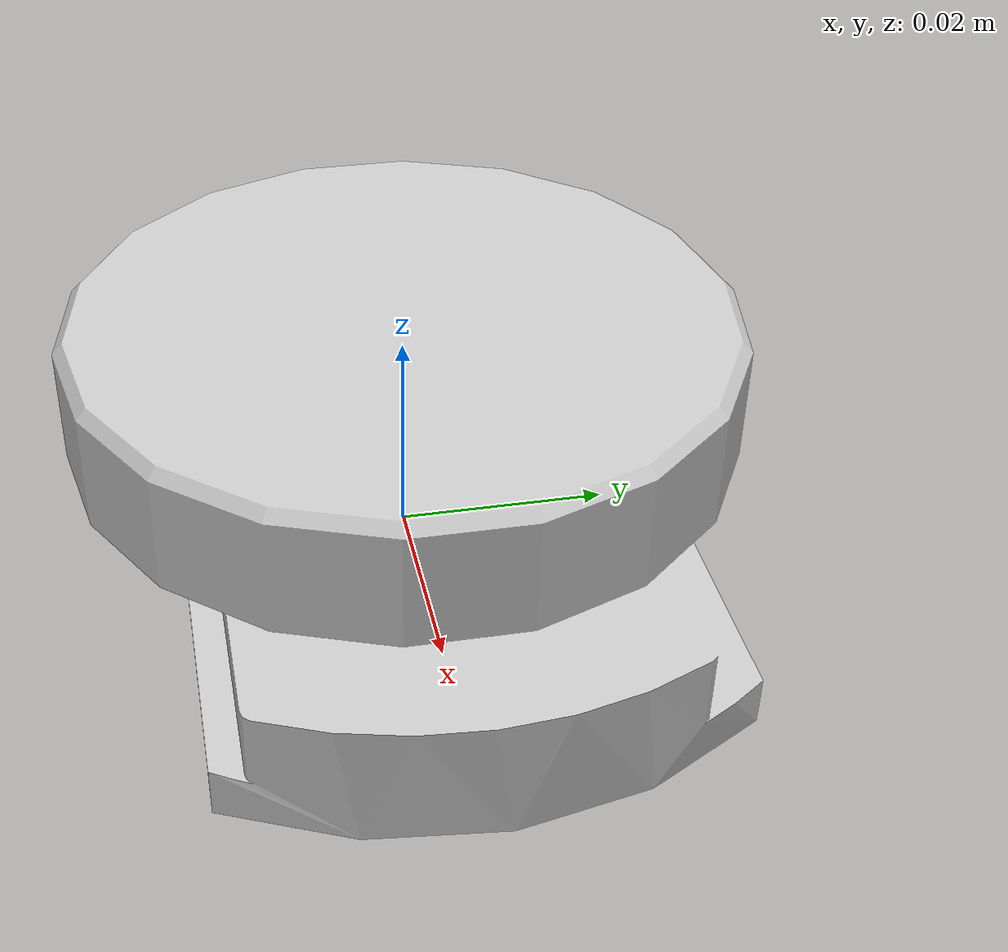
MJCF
<mujoco model="mtc_effector_side">
  <default>
    <default class="visual">
      <geom group="2" type="mesh" contype="0" conaffinity="0"/>
    </default>
    <default class="collision">
      <geom group="3" type="mesh"/>
    </default>
  </default>
  <asset>
    <material name="material_mtc_effector_side_0" specular="0.20000000000000004" shininess="1.0" rgba="0.80000000 0.80000000 0.80000000 1.0"/>
    <mesh file="mtc_effector_side.obj"/>
  </asset>
  <worldbody>
    <body name="mtc_effector_side">
      <geom material="material_mtc_effector_side_0" mesh="mtc_effector_side" class="visual"/>
      <geom mesh="mtc_effector_side" class="collision"/>
    </body>
  </worldbody>
</mujoco>
